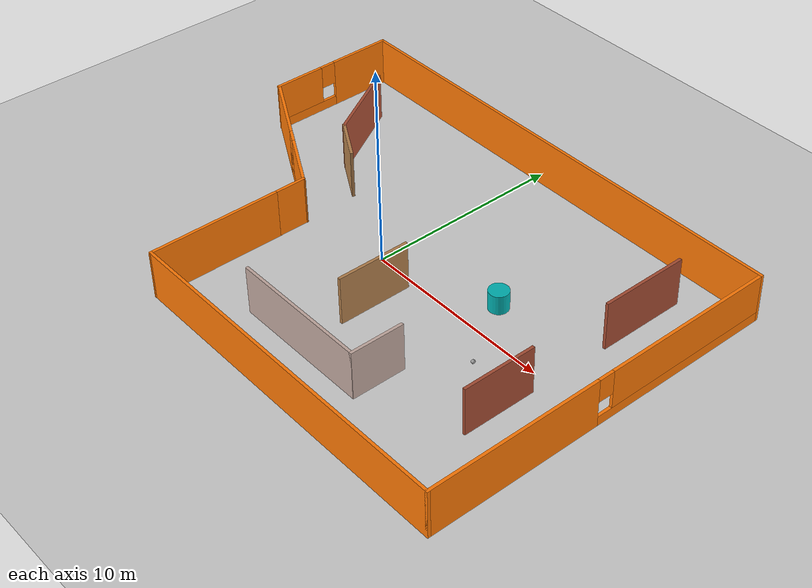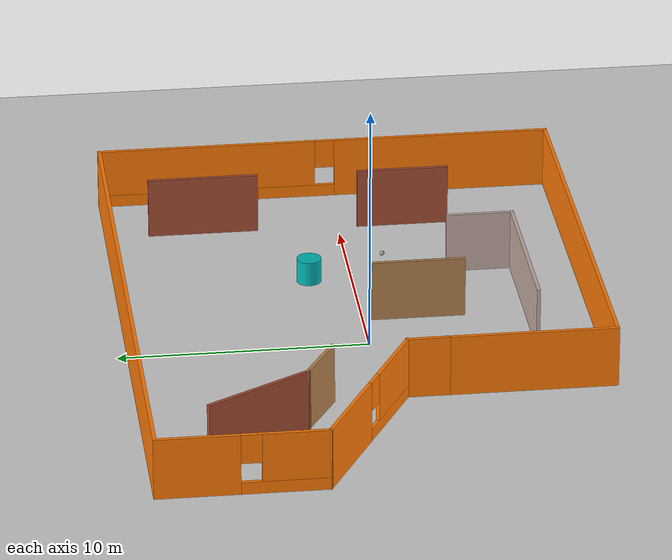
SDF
<sdf version="1.6">
 <world name="default">
  <plugin name="hello" filename="libhello.so"/>
  <light name="sun" type="directional">
   <pose>0 0 10 0 -0 0</pose>
   <diffuse>0.8 0.8 0.8 1</diffuse>
   <specular>0.2 0.2 0.2 1</specular>
   <attenuation>
    <range>1000</range>
    <constant>0.9</constant>
    <linear>0.01</linear>
    <quadratic>0.001</quadratic>
   </attenuation>
   <direction>-0.5 0.1 -0.9</direction>
  </light>
  <model name="ground_plane">
   <static>1</static>
   <link name="link">
    <collision name="collision">
     <geometry><plane><normal>0 0 1</normal><size>100 100</size></plane></geometry>
     <surface>
      <contact><collide_bitmask>65535</collide_bitmask></contact>
      <friction><ode><mu>100</mu><mu2>50</mu2></ode></friction>
     </surface>
    </collision>
    <visual name="visual">
     <cast_shadows>0</cast_shadows>
     <geometry><plane><normal>0 0 1</normal><size>100 100</size></plane></geometry>
     <material>
      <script><uri>file://media/materials/scripts/gazebo.material</uri><name>Gazebo/Grey</name></script>
     </material>
    </visual>
   </link>
  </model>
  <gravity>0 0 -9.8</gravity>
  <magnetic_field>6e-06 2.3e-05 -4.2e-05</magnetic_field>
  <atmosphere type="adiabatic"/>
  <physics name="default_physics" default="0" type="ode">
   <max_step_size>0.001</max_step_size>
   <real_time_factor>1</real_time_factor>
   <real_time_update_rate>1000</real_time_update_rate>
  </physics>
  <scene><ambient>0.4 0.4 0.4 1</ambient><background>0.7 0.7 0.7 1</background><shadows>1</shadows></scene>
  <audio><device>default</device></audio>
  <spherical_coordinates>
   <surface_model>EARTH_WGS84</surface_model>
   <latitude_deg>0</latitude_deg>
   <longitude_deg>0</longitude_deg>
   <elevation>0</elevation>
   <heading_deg>0</heading_deg>
  </spherical_coordinates>
  <model name="building_room_No1">
   <pose>1.13605 0.22143 0 0 -0 0</pose>
   <link name="Wall_0">
    <collision name="Wall_0_Collision">
     <geometry><box><size>1.75 0.15 2.5</size></box></geometry>
     <pose>0 0 1.25 0 -0 0</pose>
    </collision>
    <visual name="Wall_0_Visual">
     <pose>0 0 1.25 0 -0 0</pose>
     <geometry><box><size>1.75 0.15 2.5</size></box></geometry>
     <material>
      <script><uri>file://media/materials/scripts/gazebo.material</uri><name>Gazebo/Grey</name></script>
      <ambient>0.996078 0.47451 0.0196078 1</ambient>
     </material>
     <meta><layer>0</layer></meta>
    </visual>
    <pose>-5.66165 -1.9 0 0 -0 -1.5708</pose>
   </link>
   <link name="Wall_1">
    <collision name="Wall_1_Collision">
     <geometry><box><size>6.75 0.15 2.5</size></box></geometry>
     <pose>0 0 1.25 0 -0 0</pose>
    </collision>
    <visual name="Wall_1_Visual">
     <pose>0 0 1.25 0 -0 0</pose>
     <geometry><box><size>6.75 0.15 2.5</size></box></geometry>
     <material>
      <script><uri>file://media/materials/scripts/gazebo.material</uri><name>Gazebo/Grey</name></script>
      <ambient>0.996078 0.47451 0.0196078 1</ambient>
     </material>
     <meta><layer>0</layer></meta>
    </visual>
    <pose>-5.66165 -6 0 0 -0 -1.5708</pose>
   </link>
   <link name="Wall_11">
    <collision name="Wall_11_Collision">
     <geometry><box><size>7.25 0.15 2.5</size></box></geometry>
     <pose>0 0 1.25 0 -0 0</pose>
    </collision>
    <visual name="Wall_11_Visual">
     <pose>0 0 1.25 0 -0 0</pose>
     <geometry><box><size>7.25 0.15 2.5</size></box></geometry>
     <material>
      <script><uri>file://media/materials/scripts/gazebo.material</uri><name>Gazebo/Grey</name></script>
      <ambient>0.760784 0.662745 0.627451 1</ambient>
     </material>
     <meta><layer>0</layer></meta>
    </visual>
    <pose>1.48564 -6.76482 0 0 -0 0</pose>
   </link>
   <link name="Wall_12">
    <collision name="Wall_12_Collision">
     <geometry><box><size>2.75 0.15 2.5</size></box></geometry>
     <pose>0 0 1.25 0 -0 0</pose>
    </collision>
    <visual name="Wall_12_Visual">
     <pose>0 0 1.25 0 -0 0</pose>
     <geometry><box><size>2.75 0.15 2.5</size></box></geometry>
     <material>
      <script><uri>file://media/materials/scripts/gazebo.material</uri><name>Gazebo/Grey</name></script>
      <ambient>0.760784 0.662745 0.627451 1</ambient>
     </material>
     <meta><layer>0</layer></meta>
    </visual>
    <pose>5.03564 -5.46482 0 0 -0 1.5708</pose>
   </link>
   <link name="Wall_14">
    <collision name="Wall_14_Collision">
     <geometry><box><size>3.75 0.15 2.5</size></box></geometry>
     <pose>0 0 1.25 0 -0 0</pose>
    </collision>
    <visual name="Wall_14_Visual">
     <pose>0 0 1.25 0 -0 0</pose>
     <geometry><box><size>3.75 0.15 2.5</size></box></geometry>
     <material>
      <script><uri>file://media/materials/scripts/gazebo.material</uri><name>Gazebo/Wood</name></script>
      <ambient>1 1 1 1</ambient>
     </material>
     <meta><layer>0</layer></meta>
    </visual>
    <pose>1.06655 -2.43195 0 0 -0 1.5708</pose>
   </link>
   <link name="Wall_16">
    <collision name="Wall_16_Collision">
     <geometry><box><size>4.5 0.15 2.5</size></box></geometry>
     <pose>0 0 1.25 0 -0 0</pose>
    </collision>
    <visual name="Wall_16_Visual">
     <pose>0 0 1.25 0 -0 0</pose>
     <geometry><box><size>4.5 0.15 2.5</size></box></geometry>
     <material>
      <script><uri>file://media/materials/scripts/gazebo.material</uri><name>Gazebo/Bricks</name></script>
      <ambient>1 1 1 1</ambient>
     </material>
     <meta><layer>0</layer></meta>
    </visual>
    <pose>9.68534 5.30758 0 0 -0 -1.5708</pose>
   </link>
   <link name="Wall_18">
    <collision name="Wall_18_Collision">
     <geometry><box><size>3.75 0.15 2.5</size></box></geometry>
     <pose>0 0 1.25 0 -0 0</pose>
    </collision>
    <visual name="Wall_18_Visual">
     <pose>0 0 1.25 0 -0 0</pose>
     <geometry><box><size>3.75 0.15 2.5</size></box></geometry>
     <material>
      <script><uri>file://media/materials/scripts/gazebo.material</uri><name>Gazebo/Bricks</name></script>
      <ambient>1 1 1 1</ambient>
     </material>
     <meta><layer>0</layer></meta>
    </visual>
    <pose>9.57981 -2.90104 0 0 -0 -1.5708</pose>
   </link>
   <link name="Wall_2">
    <collision name="Wall_2_Collision">
     <geometry><box><size>18.5 0.15 2.5</size></box></geometry>
     <pose>0 0 1.25 0 -0 0</pose>
    </collision>
    <visual name="Wall_2_Visual">
     <pose>0 0 1.25 0 -0 0</pose>
     <geometry><box><size>18.5 0.15 2.5</size></box></geometry>
     <material>
      <script><uri>file://media/materials/scripts/gazebo.material</uri><name>Gazebo/Grey</name></script>
      <ambient>0.996078 0.47451 0.0196078 1</ambient>
     </material>
     <meta><layer>0</layer></meta>
    </visual>
    <pose>3.51335 -9.3 0 0 -0 0</pose>
   </link>
   <link name="Wall_3">
    <pose>12.6883 -0 0 0 -0 1.5708</pose>
    <visual name="Wall_3_Visual_0">
     <pose>-4.91034 0 1.25 0 -0 0</pose>
     <geometry><box><size>8.92932 0.15 2.5</size></box></geometry>
     <material>
      <script><uri>file://media/materials/scripts/gazebo.material</uri><name>Gazebo/Grey</name></script>
      <ambient>0.996078 0.47451 0.0196078 1</ambient>
     </material>
     <meta><layer>0</layer></meta>
    </visual>
    <collision name="Wall_3_Collision_0">
     <geometry><box><size>8.92932 0.15 2.5</size></box></geometry>
     <pose>-4.91034 0 1.25 0 -0 0</pose>
    </collision>
    <visual name="Wall_3_Visual_1">
     <pose>4.46466 0 0.25 0 -0 0</pose>
     <geometry><box><size>9.82068 0.15 0.5</size></box></geometry>
     <material>
      <script><uri>file://media/materials/scripts/gazebo.material</uri><name>Gazebo/Grey</name></script>
      <ambient>0.996078 0.47451 0.0196078 1</ambient>
     </material>
     <meta><layer>0</layer></meta>
    </visual>
    <collision name="Wall_3_Collision_1">
     <geometry><box><size>9.82068 0.15 0.5</size></box></geometry>
     <pose>4.46466 0 0.25 0 -0 0</pose>
    </collision>
    <visual name="Wall_3_Visual_2">
     <pose>4.86466 0 1.5 0 -0 0</pose>
     <geometry><box><size>9.02068 0.15 2</size></box></geometry>
     <material>
      <script><uri>file://media/materials/scripts/gazebo.material</uri><name>Gazebo/Grey</name></script>
      <ambient>0.996078 0.47451 0.0196078 1</ambient>
     </material>
     <meta><layer>0</layer></meta>
    </visual>
    <collision name="Wall_3_Collision_2">
     <geometry><box><size>9.02068 0.15 2</size></box></geometry>
     <pose>4.86466 0 1.5 0 -0 0</pose>
    </collision>
    <visual name="Wall_3_Visual_3">
     <pose>-0.04568 0 1.9 0 -0 0</pose>
     <geometry><box><size>0.8 0.15 1.2</size></box></geometry>
     <material>
      <script><uri>file://media/materials/scripts/gazebo.material</uri><name>Gazebo/Grey</name></script>
      <ambient>0.996078 0.47451 0.0196078 1</ambient>
     </material>
     <meta><layer>0</layer></meta>
    </visual>
    <collision name="Wall_3_Collision_3">
     <geometry><box><size>0.8 0.15 1.2</size></box></geometry>
     <pose>-0.04568 0 1.9 0 -0 0</pose>
    </collision>
   </link>
   <link name="Wall_4">
    <collision name="Wall_4_Collision">
     <geometry><box><size>25.5 0.15 2.5</size></box></geometry>
     <pose>0 0 1.25 0 -0 0</pose>
    </collision>
    <visual name="Wall_4_Visual">
     <pose>0 0 1.25 0 -0 0</pose>
     <geometry><box><size>25.5 0.15 2.5</size></box></geometry>
     <material>
      <script><uri>file://media/materials/scripts/gazebo.material</uri><name>Gazebo/Grey</name></script>
      <ambient>0.996078 0.47451 0.0196078 1</ambient>
     </material>
     <meta><layer>0</layer></meta>
    </visual>
    <pose>0.013348 9.3 0 0 -0 3.14159</pose>
   </link>
   <link name="Wall_5">
    <pose>-12.6617 6 0 0 -0 -1.5708</pose>
    <visual name="Wall_5_Visual_0">
     <pose>-1.72833 0 1.25 0 -0 0</pose>
     <geometry><box><size>3.29334 0.15 2.5</size></box></geometry>
     <material>
      <script><uri>file://media/materials/scripts/gazebo.material</uri><name>Gazebo/Grey</name></script>
      <ambient>0.996078 0.47451 0.0196078 1</ambient>
     </material>
     <meta><layer>0</layer></meta>
    </visual>
    <collision name="Wall_5_Collision_0">
     <geometry><box><size>3.29334 0.15 2.5</size></box></geometry>
     <pose>-1.72833 0 1.25 0 -0 0</pose>
    </collision>
    <visual name="Wall_5_Visual_1">
     <pose>1.64667 0 0.25 0 -0 0</pose>
     <geometry><box><size>3.45666 0.15 0.5</size></box></geometry>
     <material>
      <script><uri>file://media/materials/scripts/gazebo.material</uri><name>Gazebo/Grey</name></script>
      <ambient>0.996078 0.47451 0.0196078 1</ambient>
     </material>
     <meta><layer>0</layer></meta>
    </visual>
    <collision name="Wall_5_Collision_1">
     <geometry><box><size>3.45666 0.15 0.5</size></box></geometry>
     <pose>1.64667 0 0.25 0 -0 0</pose>
    </collision>
    <visual name="Wall_5_Visual_2">
     <pose>2.04667 0 1.5 0 -0 0</pose>
     <geometry><box><size>2.65666 0.15 2</size></box></geometry>
     <material>
      <script><uri>file://media/materials/scripts/gazebo.material</uri><name>Gazebo/Grey</name></script>
      <ambient>0.996078 0.47451 0.0196078 1</ambient>
     </material>
     <meta><layer>0</layer></meta>
    </visual>
    <collision name="Wall_5_Collision_2">
     <geometry><box><size>2.65666 0.15 2</size></box></geometry>
     <pose>2.04667 0 1.5 0 -0 0</pose>
    </collision>
    <visual name="Wall_5_Visual_3">
     <pose>0.318339 0 1.9 0 -0 0</pose>
     <geometry><box><size>0.8 0.15 1.2</size></box></geometry>
     <material>
      <script><uri>file://media/materials/scripts/gazebo.material</uri><name>Gazebo/Grey</name></script>
      <ambient>0.996078 0.47451 0.0196078 1</ambient>
     </material>
     <meta><layer>0</layer></meta>
    </visual>
    <collision name="Wall_5_Collision_3">
     <geometry><box><size>0.8 0.15 1.2</size></box></geometry>
     <pose>0.318339 0 1.9 0 -0 0</pose>
    </collision>
   </link>
   <link name="Wall_6">
    <pose>-9.16165 0.8 0 0 -0 -0.497343</pose>
    <visual name="Wall_6_Visual_0">
     <pose>-2.01269 0 1.25 0 -0 0</pose>
     <geometry><box><size>4.08955 0.15 2.5</size></box></geometry>
     <material>
      <script><uri>file://media/materials/scripts/gazebo.material</uri><name>Gazebo/Grey</name></script>
      <ambient>0.996078 0.47451 0.0196078 1</ambient>
     </material>
     <meta><layer>0</layer></meta>
    </visual>
    <collision name="Wall_6_Collision_0">
     <geometry><box><size>4.08955 0.15 2.5</size></box></geometry>
     <pose>-2.01269 0 1.25 0 -0 0</pose>
    </collision>
    <visual name="Wall_6_Visual_1">
     <pose>2.04478 0 0.25 0 -0 0</pose>
     <geometry><box><size>4.02537 0.15 0.5</size></box></geometry>
     <material>
      <script><uri>file://media/materials/scripts/gazebo.material</uri><name>Gazebo/Grey</name></script>
      <ambient>0.996078 0.47451 0.0196078 1</ambient>
     </material>
     <meta><layer>0</layer></meta>
    </visual>
    <collision name="Wall_6_Collision_1">
     <geometry><box><size>4.02537 0.15 0.5</size></box></geometry>
     <pose>2.04478 0 0.25 0 -0 0</pose>
    </collision>
    <visual name="Wall_6_Visual_2">
     <pose>2.44477 0 1.5 0 -0 0</pose>
     <geometry><box><size>3.22537 0.15 2</size></box></geometry>
     <material>
      <script><uri>file://media/materials/scripts/gazebo.material</uri><name>Gazebo/Grey</name></script>
      <ambient>0.996078 0.47451 0.0196078 1</ambient>
     </material>
     <meta><layer>0</layer></meta>
    </visual>
    <collision name="Wall_6_Collision_2">
     <geometry><box><size>3.22537 0.15 2</size></box></geometry>
     <pose>2.44477 0 1.5 0 -0 0</pose>
    </collision>
    <visual name="Wall_6_Visual_3">
     <pose>0.432088 0 1.9 0 -0 0</pose>
     <geometry><box><size>0.8 0.15 1.2</size></box></geometry>
     <material>
      <script><uri>file://media/materials/scripts/gazebo.material</uri><name>Gazebo/Grey</name></script>
      <ambient>0.996078 0.47451 0.0196078 1</ambient>
     </material>
     <meta><layer>0</layer></meta>
    </visual>
    <collision name="Wall_6_Collision_3">
     <geometry><box><size>0.8 0.15 1.2</size></box></geometry>
     <pose>0.432088 0 1.9 0 -0 0</pose>
    </collision>
   </link>
   <link name="Wall_8">
    <collision name="Wall_8_Collision">
     <geometry><box><size>4.75 0.15 2.5</size></box></geometry>
     <pose>0 0 1.25 0 -0 0</pose>
    </collision>
    <visual name="Wall_8_Visual">
     <pose>0 0 1.25 0 -0 0</pose>
     <geometry><box><size>4.75 0.15 2.5</size></box></geometry>
     <material>
      <script><uri>file://media/materials/scripts/gazebo.material</uri><name>Gazebo/Bricks</name></script>
      <ambient>1 1 1 1</ambient>
     </material>
     <meta><layer>0</layer></meta>
    </visual>
    <pose>-9.00548 4.99821 0 0 -0 -1.0472</pose>
   </link>
   <link name="Wall_9">
    <collision name="Wall_9_Collision">
     <geometry><box><size>2.5 0.15 2.5</size></box></geometry>
     <pose>0 0 1.25 0 -0 0</pose>
    </collision>
    <visual name="Wall_9_Visual">
     <pose>0 0 1.25 0 -0 0</pose>
     <geometry><box><size>2.5 0.15 2.5</size></box></geometry>
     <material>
      <script><uri>file://media/materials/scripts/gazebo.material</uri><name>Gazebo/Wood</name></script>
      <ambient>1 1 1 1</ambient>
     </material>
     <meta><layer>0</layer></meta>
    </visual>
    <pose>-6.8379 2.41886 0 0 -0 -0.523599</pose>
   </link>
   <static>1</static>
  </model>
  <model name="my_ball_0">
   <link name="link_0">
    <inertial>
     <mass>1</mass>
     <inertia><ixx>0.1</ixx><ixy>0</ixy><ixz>0</ixz><iyy>0.1</iyy><iyz>0</iyz><izz>0.1</izz></inertia>
    </inertial>
    <visual name="visual">
     <geometry><sphere><radius>0.1</radius></sphere></geometry>
     <material>
      <lighting>1</lighting>
      <script><uri>file://media/materials/scripts/gazebo.material</uri><name>Gazebo/Grey</name></script>
      <shader type="vertex"><normal_map>__default__</normal_map></shader>
      <ambient>1 1 1 1</ambient>
      <diffuse>1 1 1 1</diffuse>
      <specular>1 1 1 1</specular>
      <emissive>1 1 1 1</emissive>
     </material>
    </visual>
    <collision name="collision">
     <geometry><sphere><radius>0.1</radius></sphere></geometry>
     <surface>
      <friction>
       <ode><mu>1</mu><mu2>1</mu2><fdir1>0 0 0</fdir1><slip1>0</slip1><slip2>0</slip2></ode>
       <torsional>
        <coefficient>1</coefficient>
        <patch_radius>0</patch_radius>
        <surface_radius>0</surface_radius>
        <use_patch_radius>1</use_patch_radius>
        <ode><slip>0</slip></ode>
       </torsional>
      </friction>
      <bounce><restitution_coefficient>0</restitution_coefficient><threshold>1e+06</threshold></bounce>
      <contact>
       <collide_without_contact>0</collide_without_contact>
       <collide_without_contact_bitmask>1</collide_without_contact_bitmask>
       <collide_bitmask>1</collide_bitmask>
       <ode>
        <soft_cfm>0</soft_cfm>
        <soft_erp>0.2</soft_erp>
        <kp>1e+13</kp>
        <kd>1</kd>
        <max_vel>0.01</max_vel>
        <min_depth>0</min_depth>
       </ode>
       <bullet>
        <split_impulse>1</split_impulse>
        <split_impulse_penetration_threshold>-0.01</split_impulse_penetration_threshold>
        <soft_cfm>0</soft_cfm>
        <soft_erp>0.2</soft_erp>
        <kp>1e+13</kp>
        <kd>1</kd>
       </bullet>
      </contact>
     </surface>
    </collision>
   </link>
   <static>0</static>
   <pose>7.8625 -1.49334 0.1 0 -0 0</pose>
  </model>
  <plugin name="collision_map_creator" filename="libcollision_map_creator.so"/>
  <model name="unit_cylinder_0_0">
   <link name="link">
    <inertial>
     <mass>1</mass>
     <inertia><ixx>0.145833</ixx><ixy>0</ixy><ixz>0</ixz><iyy>0.145833</iyy><iyz>0</iyz><izz>0.125</izz></inertia>
    </inertial>
    <visual name="visual">
     <geometry><cylinder><radius>0.5</radius><length>1</length></cylinder></geometry>
     <material>
      <script><name>Gazebo/Grey</name><uri>file://media/materials/scripts/gazebo.material</uri></script>
      <ambient>0 0.3 0.3 1</ambient>
      <diffuse>0 0.7 0.7 1</diffuse>
      <specular>0.01 0.01 0.01 1</specular>
      <emissive>0 0 0 1</emissive>
      <shader type="vertex"><normal_map>__default__</normal_map></shader>
     </material>
    </visual>
    <collision name="collision">
     <geometry><cylinder><radius>0.5</radius><length>1</length></cylinder></geometry>
     <surface>
      <friction>
       <ode><mu>1</mu><mu2>1</mu2><fdir1>0 0 0</fdir1><slip1>0</slip1><slip2>0</slip2></ode>
       <torsional>
        <coefficient>1</coefficient>
        <patch_radius>0</patch_radius>
        <surface_radius>0</surface_radius>
        <use_patch_radius>1</use_patch_radius>
        <ode><slip>0</slip></ode>
       </torsional>
      </friction>
      <bounce><restitution_coefficient>0</restitution_coefficient><threshold>1e+06</threshold></bounce>
      <contact>
       <collide_without_contact>0</collide_without_contact>
       <collide_without_contact_bitmask>1</collide_without_contact_bitmask>
       <collide_bitmask>1</collide_bitmask>
       <ode>
        <soft_cfm>0</soft_cfm>
        <soft_erp>0.2</soft_erp>
        <kp>1e+13</kp>
        <kd>1</kd>
        <max_vel>0.01</max_vel>
        <min_depth>0</min_depth>
       </ode>
       <bullet>
        <split_impulse>1</split_impulse>
        <split_impulse_penetration_threshold>-0.01</split_impulse_penetration_threshold>
        <soft_cfm>0</soft_cfm>
        <soft_erp>0.2</soft_erp>
        <kp>1e+13</kp>
        <kd>1</kd>
       </bullet>
      </contact>
     </surface>
    </collision>
   </link>
   <static>1</static>
   <pose>5.92367 1.72501 0.499997 3e-06 4e-06 -0</pose>
  </model>
 </world>
</sdf>
